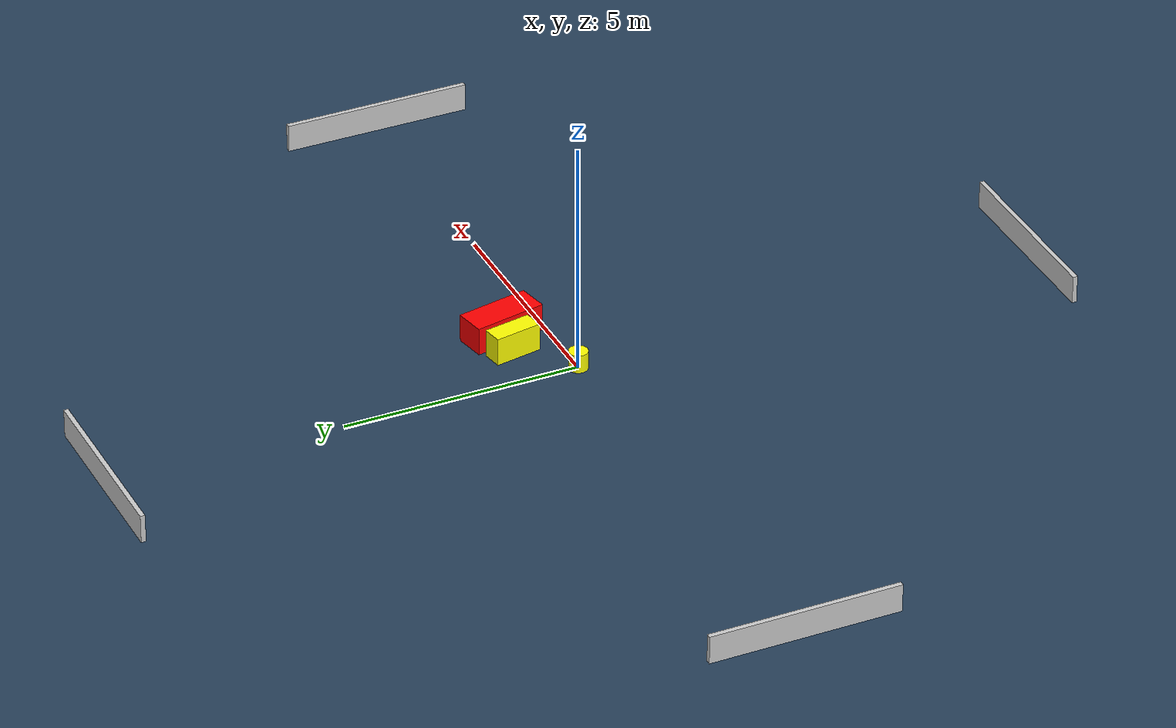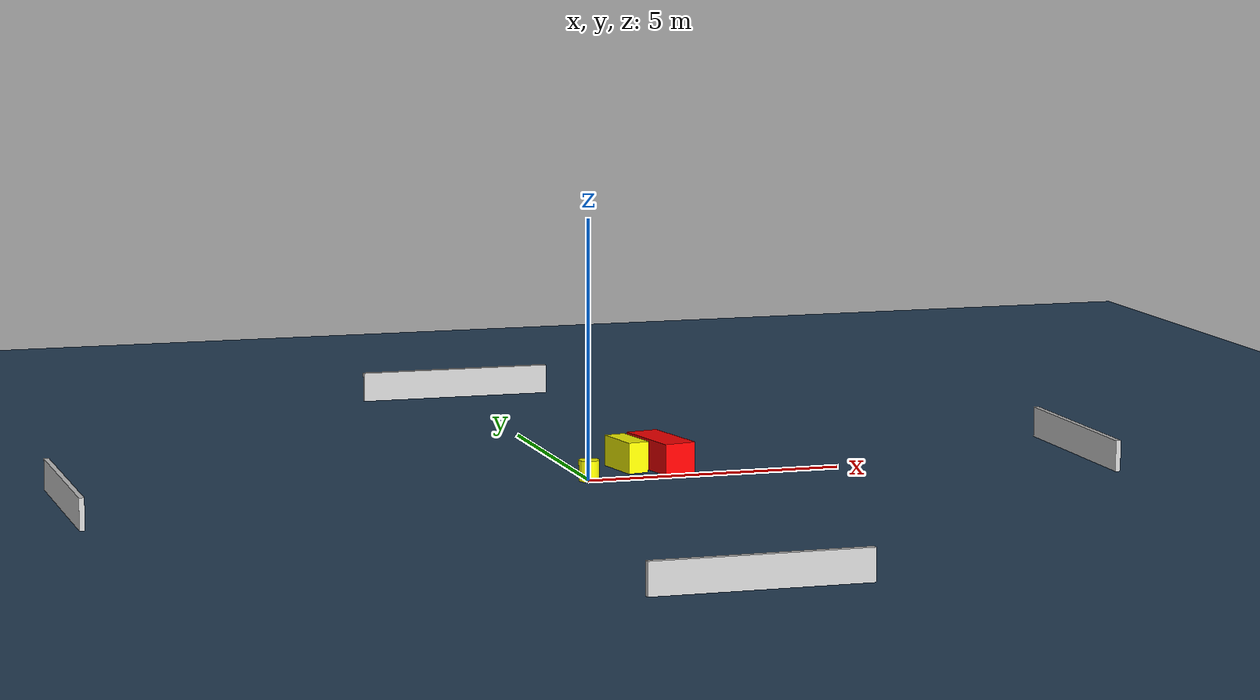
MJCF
<?xml version="1.0" ?>
<mujoco model="generated_environment">
  <option timestep="0.01" integrator="RK4" cone="elliptic"/>
  <default>
    <geom density="1"/>
  </default>
  <asset>
    <texture builtin="gradient" height="3072" name="skybox" rgb1="0.3 0.5 0.7" rgb2="0 0 0" type="skybox" width="512"/>
    <texture builtin="checker" height="300" name="groundplane" rgb1="0.2 0.3 0.4" rgb2="0.1 0.2 0.3" type="2d" width="300"/>
    <material name="groundplane" reflectance="0.2" texrepeat="5 5" texture="groundplane"/>
  </asset>
  <worldbody>
    <light dir="0 0 -1" directional="true" pos="0 0 1.5"/>
    <geom condim="3" friction="0.5 0.005 0.001" material="groundplane" name="floor" pos="0 0 0" size="0 0 0.05" type="plane"/>
    <body name="walls">
      <geom name="wall_1" condim="4" pos="-10.0 0.0 0.3" rgba="0.800000011920929 0.800000011920929 0.800000011920929 1.0" size="0.05 2.0 0.3" type="box"/>
      <geom name="wall_2" condim="4" pos="10.0 0.0 0.3" rgba="0.800000011920929 0.800000011920929 0.800000011920929 1.0" size="0.05 2.0 0.3" type="box"/>
      <geom name="wall_3" condim="4" pos="0.0 -10.0 0.3" rgba="0.800000011920929 0.800000011920929 0.800000011920929 1.0" size="2.0 0.05 0.3" type="box"/>
      <geom name="wall_4" condim="4" pos="0.0 10.0 0.3" rgba="0.800000011920929 0.800000011920929 0.800000011920929 1.0" size="2.0 0.05 0.3" type="box"/>
    </body>
    <body name="robot">
      <joint name="joint_x" type="slide" pos="0 0 0" axis="1 0 0"/>
      <joint name="joint_y" type="slide" pos="0 0 0" axis="0 1 0"/>
      <geom name="robot" type="cylinder" pos="0.0 0.0 0.2" size="0.2 0.2 0.0" mass="5.0" friction="1.0 0.005 0.0001" condim="4" rgba="1.0 1.0 0.0 1.0"/>
    </body>
    <body name="obstacle_1_movable">
      <geom name="obstacle_1_movable" condim="4" pos="1.036331029503264 0.9453546964038776 0.3" euler="0 0 10.150612534108703" friction="0.0 0.005 0.001" rgba="1.0 1.0 0.0 1.0" size="0.20866449855713293 0.5012847812184777 0.3" type="box" mass="0.1"/>
      <joint type="free"/>
    </body>
    <body name="obstacle_2_static">
      <geom name="obstacle_2_static" condim="4" pos="1.709974365450987 0.8897336936638701 0.3" euler="0 0 11.269597005706796" friction="0.0 0.005 0.001" rgba="1.0 0.0 0.0 1.0" size="0.32287859260866314 0.7737599195086391 0.3" type="box"/>
    </body>
  </worldbody>
  <actuator>
    <motor name="actuator_x" joint="joint_x" gear="1" ctrlrange="-1 1"/>
    <motor name="actuator_y" joint="joint_y" gear="1" ctrlrange="-1 1"/>
  </actuator>
</mujoco>
